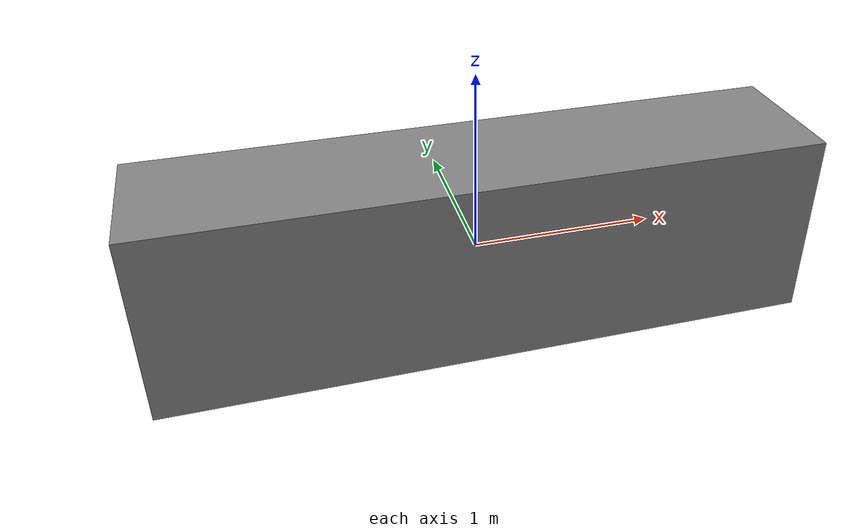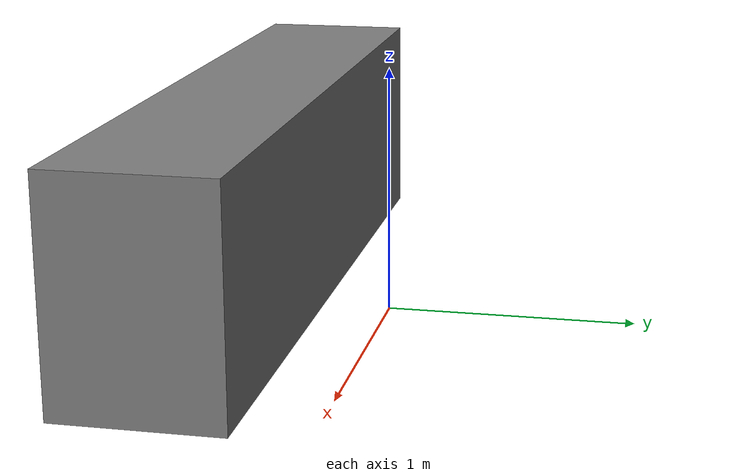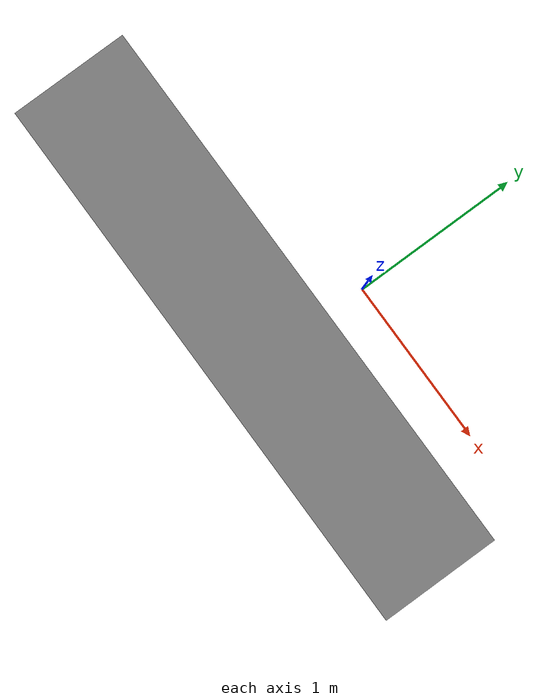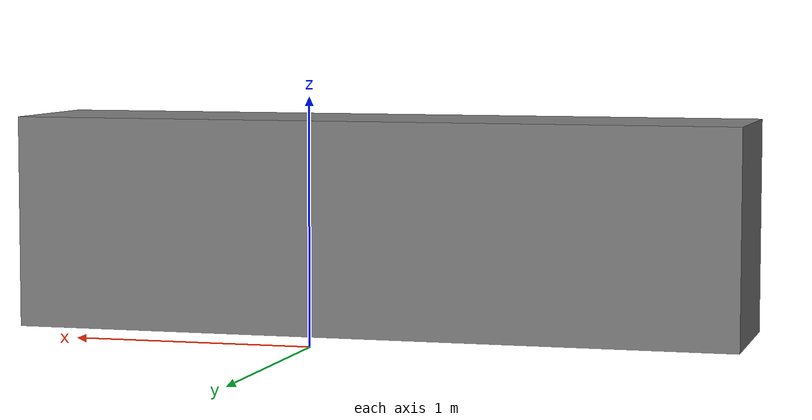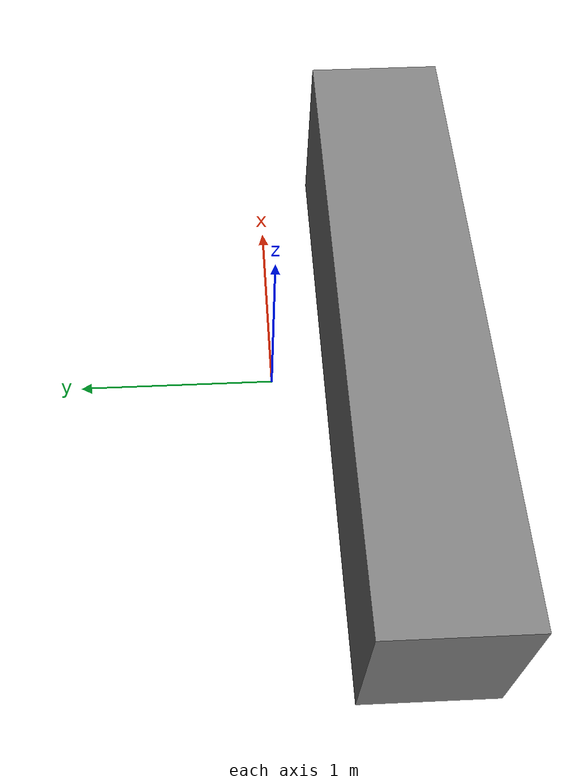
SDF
<?xml version="1.0" ?>
<sdf version="1.6">
  <model name="conveyor_belt">
      <static>false</static>

      <link name="conveyor_base">

        <visual name="conveyor_base_visual">
          <pose>-0.15 -0.6 0.445 0 0 0</pose>
          <geometry>
            <box>
              <size> 3.05 0.65 0.89 </size>
            </box>
          </geometry>
          <material>
              <ambient>0.0 0.0 0.0 1.0</ambient>
              <diffuse>0.5 0.5 0.5 1.0</diffuse>
          </material>
        </visual>
        <collision name="conveyor_base_collision">
          <pose>-0.15 -0.6 0.35 0 0 0</pose>
          <geometry>
            <box>
              <size> 3.05 0.65 0.7 </size>
            </box>
          </geometry>
        </collision>
      </link>

      <link name="conveyor_belt">

        <inertial>
          <inertia>
            <ixx>3.8185</ixx>
            <ixy>0</ixy>
            <ixz>0</ixz>
            <iyy>1781.5</iyy>
            <iyz>0</iyz>
            <izz>1784.72</izz>
          </inertia>
          <mass>100</mass>
        </inertial>
        <collision name="conveyor_belt_collision">
          <pose>-0.15 -0.6 0.85 0 0 0</pose>
          <geometry>
            <box>
              <size> 3.05 0.5 0.1 </size>
            </box>
          </geometry>
        </collision>
      </link>

      <joint name="belt_joint" type="prismatic">
        <parent>conveyor_base</parent>
        <child>conveyor_belt</child>
        <axis>
          <xyz>1 0 0</xyz>
          <limit>
            <lower>-0.4</lower>
            <upper>0.4</upper>
            <effort>100</effort>
          </limit>
        </axis>
      </joint>

      <plugin
        filename="libConveyorPlugin.so"
        name="aprs_plugins::ConveyorPlugin">
        <max_velocity>0.5</max_velocity>
      </plugin>

    </model>

</sdf>
